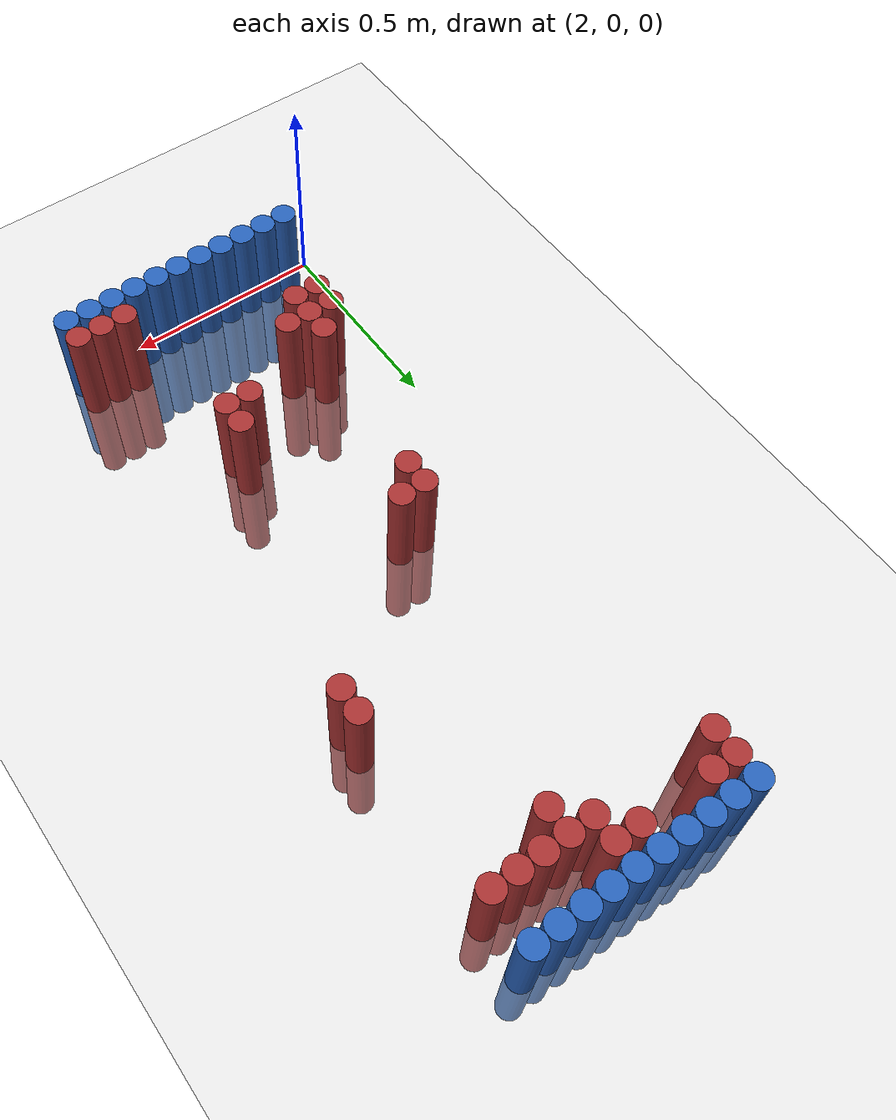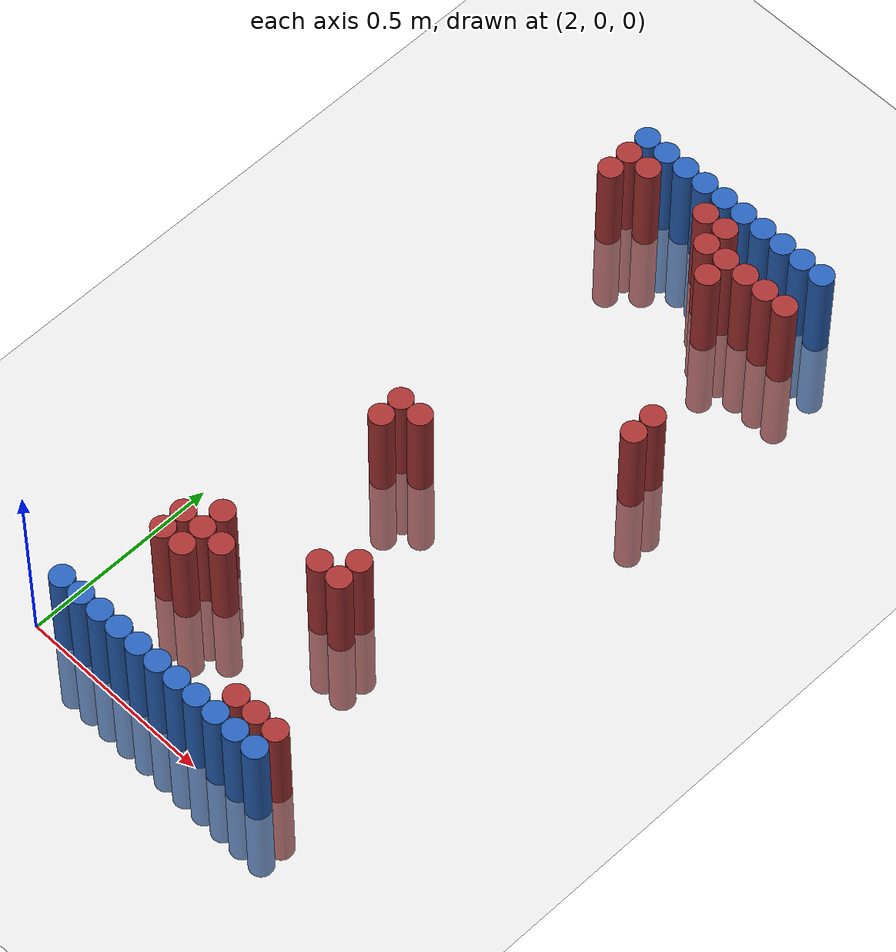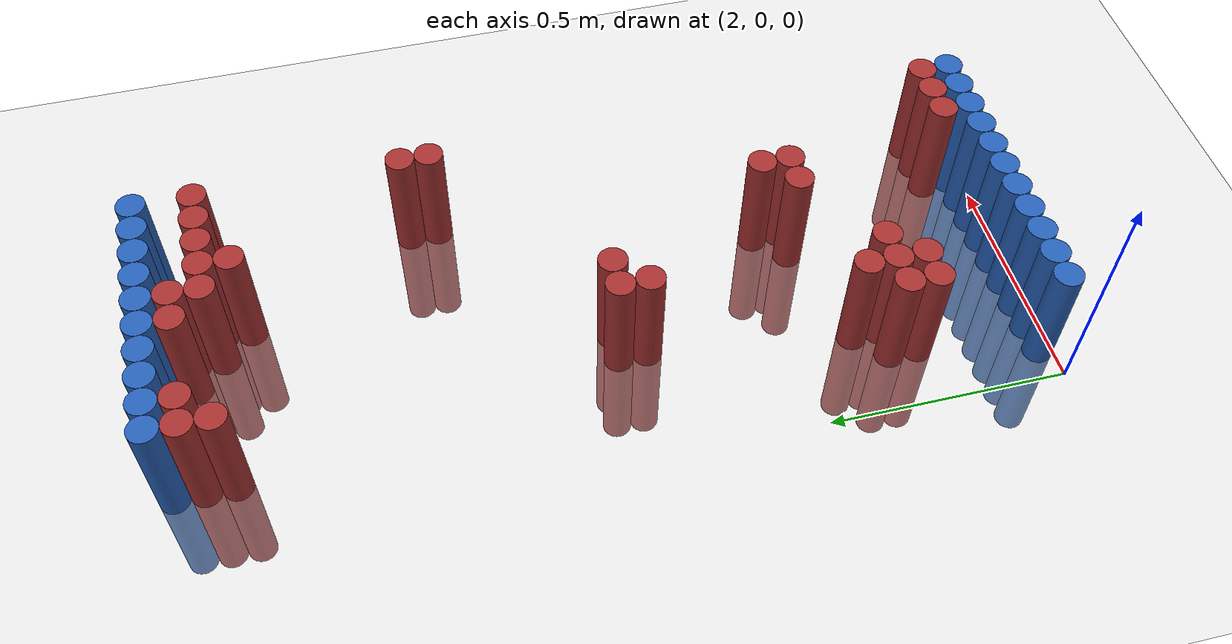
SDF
<sdf version="1.6">
 <world name="default">
  <model name="ground_plane">
   <static>1</static>
   <link name="link">
    <collision name="collision">
     <geometry><plane><normal>0 0 1</normal><size>100 100</size></plane></geometry>
     <surface><friction><ode><mu>100</mu><mu2>50</mu2></ode></friction></surface>
    </collision>
    <visual name="visual">
     <cast_shadows>0</cast_shadows>
     <geometry><plane><normal>0 0 1</normal><size>100 100</size></plane></geometry>
     <material>
      <script><uri>file://media/materials/scripts/gazebo.material</uri><name>Gazebo/Grey</name></script>
     </material>
    </visual>
   </link>
  </model>
  <model name="unit_cylinder_96">
   <static>1</static>
   <pose>2.130000 1.770000 0.000000 0.000000 0.000000 0.000000</pose>
   <link name="link">
    <inertial>
     <mass>1</mass>
     <inertia><ixx>0.145833</ixx><ixy>0</ixy><ixz>0</ixz><iyy>0.145833</iyy><iyz>0</iyz><izz>0.125</izz></inertia>
    </inertial>
    <collision name="collision">
     <geometry><cylinder><radius>0.030000</radius><length>0.5</length></cylinder></geometry>
    </collision>
    <visual name="visual">
     <geometry><cylinder><radius>0.030000</radius><length>0.5</length></cylinder></geometry>
     <material>
      <ambient>0.152000 0.379000 0.720000 1</ambient>
      <diffuse>0.152000 0.379000 0.720000 1</diffuse>
     </material>
     <material>
      <script><name>Gazebo/Grey</name><uri>file://media/materials/scripts/gazebo.material</uri></script>
     </material>
    </visual>
   </link>
  </model>
  <model name="unit_cylinder_97">
   <static>1</static>
   <pose>2.190000 1.770000 0.000000 0.000000 0.000000 0.000000</pose>
   <link name="link">
    <inertial>
     <mass>1</mass>
     <inertia><ixx>0.145833</ixx><ixy>0</ixy><ixz>0</ixz><iyy>0.145833</iyy><iyz>0</iyz><izz>0.125</izz></inertia>
    </inertial>
    <collision name="collision">
     <geometry><cylinder><radius>0.030000</radius><length>0.5</length></cylinder></geometry>
    </collision>
    <visual name="visual">
     <geometry><cylinder><radius>0.030000</radius><length>0.5</length></cylinder></geometry>
     <material>
      <ambient>0.152000 0.379000 0.720000 1</ambient>
      <diffuse>0.152000 0.379000 0.720000 1</diffuse>
     </material>
     <material>
      <script><name>Gazebo/Grey</name><uri>file://media/materials/scripts/gazebo.material</uri></script>
     </material>
    </visual>
   </link>
  </model>
  <model name="unit_cylinder_98">
   <static>1</static>
   <pose>2.250000 1.770000 0.000000 0.000000 0.000000 0.000000</pose>
   <link name="link">
    <inertial>
     <mass>1</mass>
     <inertia><ixx>0.145833</ixx><ixy>0</ixy><ixz>0</ixz><iyy>0.145833</iyy><iyz>0</iyz><izz>0.125</izz></inertia>
    </inertial>
    <collision name="collision">
     <geometry><cylinder><radius>0.030000</radius><length>0.5</length></cylinder></geometry>
    </collision>
    <visual name="visual">
     <geometry><cylinder><radius>0.030000</radius><length>0.5</length></cylinder></geometry>
     <material>
      <ambient>0.152000 0.379000 0.720000 1</ambient>
      <diffuse>0.152000 0.379000 0.720000 1</diffuse>
     </material>
     <material>
      <script><name>Gazebo/Grey</name><uri>file://media/materials/scripts/gazebo.material</uri></script>
     </material>
    </visual>
   </link>
  </model>
  <model name="unit_cylinder_99">
   <static>1</static>
   <pose>2.310000 1.770000 0.000000 0.000000 0.000000 0.000000</pose>
   <link name="link">
    <inertial>
     <mass>1</mass>
     <inertia><ixx>0.145833</ixx><ixy>0</ixy><ixz>0</ixz><iyy>0.145833</iyy><iyz>0</iyz><izz>0.125</izz></inertia>
    </inertial>
    <collision name="collision">
     <geometry><cylinder><radius>0.030000</radius><length>0.5</length></cylinder></geometry>
    </collision>
    <visual name="visual">
     <geometry><cylinder><radius>0.030000</radius><length>0.5</length></cylinder></geometry>
     <material>
      <ambient>0.152000 0.379000 0.720000 1</ambient>
      <diffuse>0.152000 0.379000 0.720000 1</diffuse>
     </material>
     <material>
      <script><name>Gazebo/Grey</name><uri>file://media/materials/scripts/gazebo.material</uri></script>
     </material>
    </visual>
   </link>
  </model>
  <model name="unit_cylinder_100">
   <static>1</static>
   <pose>2.370000 1.770000 0.000000 0.000000 0.000000 0.000000</pose>
   <link name="link">
    <inertial>
     <mass>1</mass>
     <inertia><ixx>0.145833</ixx><ixy>0</ixy><ixz>0</ixz><iyy>0.145833</iyy><iyz>0</iyz><izz>0.125</izz></inertia>
    </inertial>
    <collision name="collision">
     <geometry><cylinder><radius>0.030000</radius><length>0.5</length></cylinder></geometry>
    </collision>
    <visual name="visual">
     <geometry><cylinder><radius>0.030000</radius><length>0.5</length></cylinder></geometry>
     <material>
      <ambient>0.152000 0.379000 0.720000 1</ambient>
      <diffuse>0.152000 0.379000 0.720000 1</diffuse>
     </material>
     <material>
      <script><name>Gazebo/Grey</name><uri>file://media/materials/scripts/gazebo.material</uri></script>
     </material>
    </visual>
   </link>
  </model>
  <model name="unit_cylinder_101">
   <static>1</static>
   <pose>2.430000 1.770000 0.000000 0.000000 0.000000 0.000000</pose>
   <link name="link">
    <inertial>
     <mass>1</mass>
     <inertia><ixx>0.145833</ixx><ixy>0</ixy><ixz>0</ixz><iyy>0.145833</iyy><iyz>0</iyz><izz>0.125</izz></inertia>
    </inertial>
    <collision name="collision">
     <geometry><cylinder><radius>0.030000</radius><length>0.5</length></cylinder></geometry>
    </collision>
    <visual name="visual">
     <geometry><cylinder><radius>0.030000</radius><length>0.5</length></cylinder></geometry>
     <material>
      <ambient>0.152000 0.379000 0.720000 1</ambient>
      <diffuse>0.152000 0.379000 0.720000 1</diffuse>
     </material>
     <material>
      <script><name>Gazebo/Grey</name><uri>file://media/materials/scripts/gazebo.material</uri></script>
     </material>
    </visual>
   </link>
  </model>
  <model name="unit_cylinder_102">
   <static>1</static>
   <pose>2.490000 1.770000 0.000000 0.000000 0.000000 0.000000</pose>
   <link name="link">
    <inertial>
     <mass>1</mass>
     <inertia><ixx>0.145833</ixx><ixy>0</ixy><ixz>0</ixz><iyy>0.145833</iyy><iyz>0</iyz><izz>0.125</izz></inertia>
    </inertial>
    <collision name="collision">
     <geometry><cylinder><radius>0.030000</radius><length>0.5</length></cylinder></geometry>
    </collision>
    <visual name="visual">
     <geometry><cylinder><radius>0.030000</radius><length>0.5</length></cylinder></geometry>
     <material>
      <ambient>0.152000 0.379000 0.720000 1</ambient>
      <diffuse>0.152000 0.379000 0.720000 1</diffuse>
     </material>
     <material>
      <script><name>Gazebo/Grey</name><uri>file://media/materials/scripts/gazebo.material</uri></script>
     </material>
    </visual>
   </link>
  </model>
  <model name="unit_cylinder_103">
   <static>1</static>
   <pose>2.550000 1.770000 0.000000 0.000000 0.000000 0.000000</pose>
   <link name="link">
    <inertial>
     <mass>1</mass>
     <inertia><ixx>0.145833</ixx><ixy>0</ixy><ixz>0</ixz><iyy>0.145833</iyy><iyz>0</iyz><izz>0.125</izz></inertia>
    </inertial>
    <collision name="collision">
     <geometry><cylinder><radius>0.030000</radius><length>0.5</length></cylinder></geometry>
    </collision>
    <visual name="visual">
     <geometry><cylinder><radius>0.030000</radius><length>0.5</length></cylinder></geometry>
     <material>
      <ambient>0.152000 0.379000 0.720000 1</ambient>
      <diffuse>0.152000 0.379000 0.720000 1</diffuse>
     </material>
     <material>
      <script><name>Gazebo/Grey</name><uri>file://media/materials/scripts/gazebo.material</uri></script>
     </material>
    </visual>
   </link>
  </model>
  <model name="unit_cylinder_104">
   <static>1</static>
   <pose>2.610000 1.770000 0.000000 0.000000 0.000000 0.000000</pose>
   <link name="link">
    <inertial>
     <mass>1</mass>
     <inertia><ixx>0.145833</ixx><ixy>0</ixy><ixz>0</ixz><iyy>0.145833</iyy><iyz>0</iyz><izz>0.125</izz></inertia>
    </inertial>
    <collision name="collision">
     <geometry><cylinder><radius>0.030000</radius><length>0.5</length></cylinder></geometry>
    </collision>
    <visual name="visual">
     <geometry><cylinder><radius>0.030000</radius><length>0.5</length></cylinder></geometry>
     <material>
      <ambient>0.152000 0.379000 0.720000 1</ambient>
      <diffuse>0.152000 0.379000 0.720000 1</diffuse>
     </material>
     <material>
      <script><name>Gazebo/Grey</name><uri>file://media/materials/scripts/gazebo.material</uri></script>
     </material>
    </visual>
   </link>
  </model>
  <model name="unit_cylinder_105">
   <static>1</static>
   <pose>2.670000 1.770000 0.000000 0.000000 0.000000 0.000000</pose>
   <link name="link">
    <inertial>
     <mass>1</mass>
     <inertia><ixx>0.145833</ixx><ixy>0</ixy><ixz>0</ixz><iyy>0.145833</iyy><iyz>0</iyz><izz>0.125</izz></inertia>
    </inertial>
    <collision name="collision">
     <geometry><cylinder><radius>0.030000</radius><length>0.5</length></cylinder></geometry>
    </collision>
    <visual name="visual">
     <geometry><cylinder><radius>0.030000</radius><length>0.5</length></cylinder></geometry>
     <material>
      <ambient>0.152000 0.379000 0.720000 1</ambient>
      <diffuse>0.152000 0.379000 0.720000 1</diffuse>
     </material>
     <material>
      <script><name>Gazebo/Grey</name><uri>file://media/materials/scripts/gazebo.material</uri></script>
     </material>
    </visual>
   </link>
  </model>
  <model name="unit_cylinder_125">
   <static>1</static>
   <pose>2.130000 1.710000 0.000000 0.000000 0.000000 0.000000</pose>
   <link name="link">
    <inertial>
     <mass>1</mass>
     <inertia><ixx>0.145833</ixx><ixy>0</ixy><ixz>0</ixz><iyy>0.145833</iyy><iyz>0</iyz><izz>0.125</izz></inertia>
    </inertial>
    <collision name="collision">
     <geometry><cylinder><radius>0.030000</radius><length>0.5</length></cylinder></geometry>
    </collision>
    <visual name="visual">
     <geometry><cylinder><radius>0.030000</radius><length>0.5</length></cylinder></geometry>
     <material>
      <ambient>0.648000 0.192000 0.192000 1</ambient>
      <diffuse>0.648000 0.192000 0.192000 1</diffuse>
     </material>
     <material>
      <script><name>Gazebo/Grey</name><uri>file://media/materials/scripts/gazebo.material</uri></script>
     </material>
    </visual>
   </link>
  </model>
  <model name="unit_cylinder_126">
   <static>1</static>
   <pose>2.190000 1.710000 0.000000 0.000000 0.000000 0.000000</pose>
   <link name="link">
    <inertial>
     <mass>1</mass>
     <inertia><ixx>0.145833</ixx><ixy>0</ixy><ixz>0</ixz><iyy>0.145833</iyy><iyz>0</iyz><izz>0.125</izz></inertia>
    </inertial>
    <collision name="collision">
     <geometry><cylinder><radius>0.030000</radius><length>0.5</length></cylinder></geometry>
    </collision>
    <visual name="visual">
     <geometry><cylinder><radius>0.030000</radius><length>0.5</length></cylinder></geometry>
     <material>
      <ambient>0.648000 0.192000 0.192000 1</ambient>
      <diffuse>0.648000 0.192000 0.192000 1</diffuse>
     </material>
     <material>
      <script><name>Gazebo/Grey</name><uri>file://media/materials/scripts/gazebo.material</uri></script>
     </material>
    </visual>
   </link>
  </model>
  <model name="unit_cylinder_127">
   <static>1</static>
   <pose>2.370000 1.710000 0.000000 0.000000 0.000000 0.000000</pose>
   <link name="link">
    <inertial>
     <mass>1</mass>
     <inertia><ixx>0.145833</ixx><ixy>0</ixy><ixz>0</ixz><iyy>0.145833</iyy><iyz>0</iyz><izz>0.125</izz></inertia>
    </inertial>
    <collision name="collision">
     <geometry><cylinder><radius>0.030000</radius><length>0.5</length></cylinder></geometry>
    </collision>
    <visual name="visual">
     <geometry><cylinder><radius>0.030000</radius><length>0.5</length></cylinder></geometry>
     <material>
      <ambient>0.648000 0.192000 0.192000 1</ambient>
      <diffuse>0.648000 0.192000 0.192000 1</diffuse>
     </material>
     <material>
      <script><name>Gazebo/Grey</name><uri>file://media/materials/scripts/gazebo.material</uri></script>
     </material>
    </visual>
   </link>
  </model>
  <model name="unit_cylinder_128">
   <static>1</static>
   <pose>2.430000 1.710000 0.000000 0.000000 0.000000 0.000000</pose>
   <link name="link">
    <inertial>
     <mass>1</mass>
     <inertia><ixx>0.145833</ixx><ixy>0</ixy><ixz>0</ixz><iyy>0.145833</iyy><iyz>0</iyz><izz>0.125</izz></inertia>
    </inertial>
    <collision name="collision">
     <geometry><cylinder><radius>0.030000</radius><length>0.5</length></cylinder></geometry>
    </collision>
    <visual name="visual">
     <geometry><cylinder><radius>0.030000</radius><length>0.5</length></cylinder></geometry>
     <material>
      <ambient>0.648000 0.192000 0.192000 1</ambient>
      <diffuse>0.648000 0.192000 0.192000 1</diffuse>
     </material>
     <material>
      <script><name>Gazebo/Grey</name><uri>file://media/materials/scripts/gazebo.material</uri></script>
     </material>
    </visual>
   </link>
  </model>
  <model name="unit_cylinder_136">
   <static>1</static>
   <pose>2.130000 1.650000 0.000000 0.000000 0.000000 0.000000</pose>
   <link name="link">
    <inertial>
     <mass>1</mass>
     <inertia><ixx>0.145833</ixx><ixy>0</ixy><ixz>0</ixz><iyy>0.145833</iyy><iyz>0</iyz><izz>0.125</izz></inertia>
    </inertial>
    <collision name="collision">
     <geometry><cylinder><radius>0.030000</radius><length>0.5</length></cylinder></geometry>
    </collision>
    <visual name="visual">
     <geometry><cylinder><radius>0.030000</radius><length>0.5</length></cylinder></geometry>
     <material>
      <ambient>0.648000 0.192000 0.192000 1</ambient>
      <diffuse>0.648000 0.192000 0.192000 1</diffuse>
     </material>
     <material>
      <script><name>Gazebo/Grey</name><uri>file://media/materials/scripts/gazebo.material</uri></script>
     </material>
    </visual>
   </link>
  </model>
  <model name="unit_cylinder_137">
   <static>1</static>
   <pose>2.430000 1.650000 0.000000 0.000000 0.000000 0.000000</pose>
   <link name="link">
    <inertial>
     <mass>1</mass>
     <inertia><ixx>0.145833</ixx><ixy>0</ixy><ixz>0</ixz><iyy>0.145833</iyy><iyz>0</iyz><izz>0.125</izz></inertia>
    </inertial>
    <collision name="collision">
     <geometry><cylinder><radius>0.030000</radius><length>0.5</length></cylinder></geometry>
    </collision>
    <visual name="visual">
     <geometry><cylinder><radius>0.030000</radius><length>0.5</length></cylinder></geometry>
     <material>
      <ambient>0.648000 0.192000 0.192000 1</ambient>
      <diffuse>0.648000 0.192000 0.192000 1</diffuse>
     </material>
     <material>
      <script><name>Gazebo/Grey</name><uri>file://media/materials/scripts/gazebo.material</uri></script>
     </material>
    </visual>
   </link>
  </model>
  <model name="unit_cylinder_138">
   <static>1</static>
   <pose>2.490000 1.650000 0.000000 0.000000 0.000000 0.000000</pose>
   <link name="link">
    <inertial>
     <mass>1</mass>
     <inertia><ixx>0.145833</ixx><ixy>0</ixy><ixz>0</ixz><iyy>0.145833</iyy><iyz>0</iyz><izz>0.125</izz></inertia>
    </inertial>
    <collision name="collision">
     <geometry><cylinder><radius>0.030000</radius><length>0.5</length></cylinder></geometry>
    </collision>
    <visual name="visual">
     <geometry><cylinder><radius>0.030000</radius><length>0.5</length></cylinder></geometry>
     <material>
      <ambient>0.648000 0.192000 0.192000 1</ambient>
      <diffuse>0.648000 0.192000 0.192000 1</diffuse>
     </material>
     <material>
      <script><name>Gazebo/Grey</name><uri>file://media/materials/scripts/gazebo.material</uri></script>
     </material>
    </visual>
   </link>
  </model>
  <model name="unit_cylinder_139">
   <static>1</static>
   <pose>2.550000 1.650000 0.000000 0.000000 0.000000 0.000000</pose>
   <link name="link">
    <inertial>
     <mass>1</mass>
     <inertia><ixx>0.145833</ixx><ixy>0</ixy><ixz>0</ixz><iyy>0.145833</iyy><iyz>0</iyz><izz>0.125</izz></inertia>
    </inertial>
    <collision name="collision">
     <geometry><cylinder><radius>0.030000</radius><length>0.5</length></cylinder></geometry>
    </collision>
    <visual name="visual">
     <geometry><cylinder><radius>0.030000</radius><length>0.5</length></cylinder></geometry>
     <material>
      <ambient>0.648000 0.192000 0.192000 1</ambient>
      <diffuse>0.648000 0.192000 0.192000 1</diffuse>
     </material>
     <material>
      <script><name>Gazebo/Grey</name><uri>file://media/materials/scripts/gazebo.material</uri></script>
     </material>
    </visual>
   </link>
  </model>
  <model name="unit_cylinder_140">
   <static>1</static>
   <pose>2.610000 1.650000 0.000000 0.000000 0.000000 0.000000</pose>
   <link name="link">
    <inertial>
     <mass>1</mass>
     <inertia><ixx>0.145833</ixx><ixy>0</ixy><ixz>0</ixz><iyy>0.145833</iyy><iyz>0</iyz><izz>0.125</izz></inertia>
    </inertial>
    <collision name="collision">
     <geometry><cylinder><radius>0.030000</radius><length>0.5</length></cylinder></geometry>
    </collision>
    <visual name="visual">
     <geometry><cylinder><radius>0.030000</radius><length>0.5</length></cylinder></geometry>
     <material>
      <ambient>0.648000 0.192000 0.192000 1</ambient>
      <diffuse>0.648000 0.192000 0.192000 1</diffuse>
     </material>
     <material>
      <script><name>Gazebo/Grey</name><uri>file://media/materials/scripts/gazebo.material</uri></script>
     </material>
    </visual>
   </link>
  </model>
  <model name="unit_cylinder_141">
   <static>1</static>
   <pose>2.670000 1.650000 0.000000 0.000000 0.000000 0.000000</pose>
   <link name="link">
    <inertial>
     <mass>1</mass>
     <inertia><ixx>0.145833</ixx><ixy>0</ixy><ixz>0</ixz><iyy>0.145833</iyy><iyz>0</iyz><izz>0.125</izz></inertia>
    </inertial>
    <collision name="collision">
     <geometry><cylinder><radius>0.030000</radius><length>0.5</length></cylinder></geometry>
    </collision>
    <visual name="visual">
     <geometry><cylinder><radius>0.030000</radius><length>0.5</length></cylinder></geometry>
     <material>
      <ambient>0.648000 0.192000 0.192000 1</ambient>
      <diffuse>0.648000 0.192000 0.192000 1</diffuse>
     </material>
     <material>
      <script><name>Gazebo/Grey</name><uri>file://media/materials/scripts/gazebo.material</uri></script>
     </material>
    </visual>
   </link>
  </model>
  <model name="unit_cylinder_148">
   <static>1</static>
   <pose>2.490000 1.590000 0.000000 0.000000 0.000000 0.000000</pose>
   <link name="link">
    <inertial>
     <mass>1</mass>
     <inertia><ixx>0.145833</ixx><ixy>0</ixy><ixz>0</ixz><iyy>0.145833</iyy><iyz>0</iyz><izz>0.125</izz></inertia>
    </inertial>
    <collision name="collision">
     <geometry><cylinder><radius>0.030000</radius><length>0.5</length></cylinder></geometry>
    </collision>
    <visual name="visual">
     <geometry><cylinder><radius>0.030000</radius><length>0.5</length></cylinder></geometry>
     <material>
      <ambient>0.648000 0.192000 0.192000 1</ambient>
      <diffuse>0.648000 0.192000 0.192000 1</diffuse>
     </material>
     <material>
      <script><name>Gazebo/Grey</name><uri>file://media/materials/scripts/gazebo.material</uri></script>
     </material>
    </visual>
   </link>
  </model>
  <model name="unit_cylinder_175">
   <static>1</static>
   <pose>2.670000 1.230000 0.000000 0.000000 0.000000 0.000000</pose>
   <link name="link">
    <inertial>
     <mass>1</mass>
     <inertia><ixx>0.145833</ixx><ixy>0</ixy><ixz>0</ixz><iyy>0.145833</iyy><iyz>0</iyz><izz>0.125</izz></inertia>
    </inertial>
    <collision name="collision">
     <geometry><cylinder><radius>0.030000</radius><length>0.5</length></cylinder></geometry>
    </collision>
    <visual name="visual">
     <geometry><cylinder><radius>0.030000</radius><length>0.5</length></cylinder></geometry>
     <material>
      <ambient>0.648000 0.192000 0.192000 1</ambient>
      <diffuse>0.648000 0.192000 0.192000 1</diffuse>
     </material>
     <material>
      <script><name>Gazebo/Grey</name><uri>file://media/materials/scripts/gazebo.material</uri></script>
     </material>
    </visual>
   </link>
  </model>
  <model name="unit_cylinder_178">
   <static>1</static>
   <pose>2.670000 1.170000 0.000000 0.000000 0.000000 0.000000</pose>
   <link name="link">
    <inertial>
     <mass>1</mass>
     <inertia><ixx>0.145833</ixx><ixy>0</ixy><ixz>0</ixz><iyy>0.145833</iyy><iyz>0</iyz><izz>0.125</izz></inertia>
    </inertial>
    <collision name="collision">
     <geometry><cylinder><radius>0.030000</radius><length>0.5</length></cylinder></geometry>
    </collision>
    <visual name="visual">
     <geometry><cylinder><radius>0.030000</radius><length>0.5</length></cylinder></geometry>
     <material>
      <ambient>0.648000 0.192000 0.192000 1</ambient>
      <diffuse>0.648000 0.192000 0.192000 1</diffuse>
     </material>
     <material>
      <script><name>Gazebo/Grey</name><uri>file://media/materials/scripts/gazebo.material</uri></script>
     </material>
    </visual>
   </link>
  </model>
  <model name="unit_cylinder_184">
   <static>1</static>
   <pose>2.250000 0.870000 0.000000 0.000000 0.000000 0.000000</pose>
   <link name="link">
    <inertial>
     <mass>1</mass>
     <inertia><ixx>0.145833</ixx><ixy>0</ixy><ixz>0</ixz><iyy>0.145833</iyy><iyz>0</iyz><izz>0.125</izz></inertia>
    </inertial>
    <collision name="collision">
     <geometry><cylinder><radius>0.030000</radius><length>0.5</length></cylinder></geometry>
    </collision>
    <visual name="visual">
     <geometry><cylinder><radius>0.030000</radius><length>0.5</length></cylinder></geometry>
     <material>
      <ambient>0.648000 0.192000 0.192000 1</ambient>
      <diffuse>0.648000 0.192000 0.192000 1</diffuse>
     </material>
     <material>
      <script><name>Gazebo/Grey</name><uri>file://media/materials/scripts/gazebo.material</uri></script>
     </material>
    </visual>
   </link>
  </model>
  <model name="unit_cylinder_185">
   <static>1</static>
   <pose>2.310000 0.870000 0.000000 0.000000 0.000000 0.000000</pose>
   <link name="link">
    <inertial>
     <mass>1</mass>
     <inertia><ixx>0.145833</ixx><ixy>0</ixy><ixz>0</ixz><iyy>0.145833</iyy><iyz>0</iyz><izz>0.125</izz></inertia>
    </inertial>
    <collision name="collision">
     <geometry><cylinder><radius>0.030000</radius><length>0.5</length></cylinder></geometry>
    </collision>
    <visual name="visual">
     <geometry><cylinder><radius>0.030000</radius><length>0.5</length></cylinder></geometry>
     <material>
      <ambient>0.648000 0.192000 0.192000 1</ambient>
      <diffuse>0.648000 0.192000 0.192000 1</diffuse>
     </material>
     <material>
      <script><name>Gazebo/Grey</name><uri>file://media/materials/scripts/gazebo.material</uri></script>
     </material>
    </visual>
   </link>
  </model>
  <model name="unit_cylinder_188">
   <static>1</static>
   <pose>2.250000 0.810000 0.000000 0.000000 0.000000 0.000000</pose>
   <link name="link">
    <inertial>
     <mass>1</mass>
     <inertia><ixx>0.145833</ixx><ixy>0</ixy><ixz>0</ixz><iyy>0.145833</iyy><iyz>0</iyz><izz>0.125</izz></inertia>
    </inertial>
    <collision name="collision">
     <geometry><cylinder><radius>0.030000</radius><length>0.5</length></cylinder></geometry>
    </collision>
    <visual name="visual">
     <geometry><cylinder><radius>0.030000</radius><length>0.5</length></cylinder></geometry>
     <material>
      <ambient>0.648000 0.192000 0.192000 1</ambient>
      <diffuse>0.648000 0.192000 0.192000 1</diffuse>
     </material>
     <material>
      <script><name>Gazebo/Grey</name><uri>file://media/materials/scripts/gazebo.material</uri></script>
     </material>
    </visual>
   </link>
  </model>
  <model name="unit_cylinder_193">
   <static>1</static>
   <pose>2.490000 0.510000 0.000000 0.000000 0.000000 0.000000</pose>
   <link name="link">
    <inertial>
     <mass>1</mass>
     <inertia><ixx>0.145833</ixx><ixy>0</ixy><ixz>0</ixz><iyy>0.145833</iyy><iyz>0</iyz><izz>0.125</izz></inertia>
    </inertial>
    <collision name="collision">
     <geometry><cylinder><radius>0.030000</radius><length>0.5</length></cylinder></geometry>
    </collision>
    <visual name="visual">
     <geometry><cylinder><radius>0.030000</radius><length>0.5</length></cylinder></geometry>
     <material>
      <ambient>0.648000 0.192000 0.192000 1</ambient>
      <diffuse>0.648000 0.192000 0.192000 1</diffuse>
     </material>
     <material>
      <script><name>Gazebo/Grey</name><uri>file://media/materials/scripts/gazebo.material</uri></script>
     </material>
    </visual>
   </link>
  </model>
  <model name="unit_cylinder_196">
   <static>1</static>
   <pose>2.430000 0.450000 0.000000 0.000000 0.000000 0.000000</pose>
   <link name="link">
    <inertial>
     <mass>1</mass>
     <inertia><ixx>0.145833</ixx><ixy>0</ixy><ixz>0</ixz><iyy>0.145833</iyy><iyz>0</iyz><izz>0.125</izz></inertia>
    </inertial>
    <collision name="collision">
     <geometry><cylinder><radius>0.030000</radius><length>0.5</length></cylinder></geometry>
    </collision>
    <visual name="visual">
     <geometry><cylinder><radius>0.030000</radius><length>0.5</length></cylinder></geometry>
     <material>
      <ambient>0.648000 0.192000 0.192000 1</ambient>
      <diffuse>0.648000 0.192000 0.192000 1</diffuse>
     </material>
     <material>
      <script><name>Gazebo/Grey</name><uri>file://media/materials/scripts/gazebo.material</uri></script>
     </material>
    </visual>
   </link>
  </model>
  <model name="unit_cylinder_197">
   <static>1</static>
   <pose>2.490000 0.450000 0.000000 0.000000 0.000000 0.000000</pose>
   <link name="link">
    <inertial>
     <mass>1</mass>
     <inertia><ixx>0.145833</ixx><ixy>0</ixy><ixz>0</ixz><iyy>0.145833</iyy><iyz>0</iyz><izz>0.125</izz></inertia>
    </inertial>
    <collision name="collision">
     <geometry><cylinder><radius>0.030000</radius><length>0.5</length></cylinder></geometry>
    </collision>
    <visual name="visual">
     <geometry><cylinder><radius>0.030000</radius><length>0.5</length></cylinder></geometry>
     <material>
      <ambient>0.648000 0.192000 0.192000 1</ambient>
      <diffuse>0.648000 0.192000 0.192000 1</diffuse>
     </material>
     <material>
      <script><name>Gazebo/Grey</name><uri>file://media/materials/scripts/gazebo.material</uri></script>
     </material>
    </visual>
   </link>
  </model>
  <model name="unit_cylinder_198">
   <static>1</static>
   <pose>2.190000 0.390000 0.000000 0.000000 0.000000 0.000000</pose>
   <link name="link">
    <inertial>
     <mass>1</mass>
     <inertia><ixx>0.145833</ixx><ixy>0</ixy><ixz>0</ixz><iyy>0.145833</iyy><iyz>0</iyz><izz>0.125</izz></inertia>
    </inertial>
    <collision name="collision">
     <geometry><cylinder><radius>0.030000</radius><length>0.5</length></cylinder></geometry>
    </collision>
    <visual name="visual">
     <geometry><cylinder><radius>0.030000</radius><length>0.5</length></cylinder></geometry>
     <material>
      <ambient>0.648000 0.192000 0.192000 1</ambient>
      <diffuse>0.648000 0.192000 0.192000 1</diffuse>
     </material>
     <material>
      <script><name>Gazebo/Grey</name><uri>file://media/materials/scripts/gazebo.material</uri></script>
     </material>
    </visual>
   </link>
  </model>
  <model name="unit_cylinder_199">
   <static>1</static>
   <pose>2.130000 0.330000 0.000000 0.000000 0.000000 0.000000</pose>
   <link name="link">
    <inertial>
     <mass>1</mass>
     <inertia><ixx>0.145833</ixx><ixy>0</ixy><ixz>0</ixz><iyy>0.145833</iyy><iyz>0</iyz><izz>0.125</izz></inertia>
    </inertial>
    <collision name="collision">
     <geometry><cylinder><radius>0.030000</radius><length>0.5</length></cylinder></geometry>
    </collision>
    <visual name="visual">
     <geometry><cylinder><radius>0.030000</radius><length>0.5</length></cylinder></geometry>
     <material>
      <ambient>0.648000 0.192000 0.192000 1</ambient>
      <diffuse>0.648000 0.192000 0.192000 1</diffuse>
     </material>
     <material>
      <script><name>Gazebo/Grey</name><uri>file://media/materials/scripts/gazebo.material</uri></script>
     </material>
    </visual>
   </link>
  </model>
  <model name="unit_cylinder_200">
   <static>1</static>
   <pose>2.190000 0.330000 0.000000 0.000000 0.000000 0.000000</pose>
   <link name="link">
    <inertial>
     <mass>1</mass>
     <inertia><ixx>0.145833</ixx><ixy>0</ixy><ixz>0</ixz><iyy>0.145833</iyy><iyz>0</iyz><izz>0.125</izz></inertia>
    </inertial>
    <collision name="collision">
     <geometry><cylinder><radius>0.030000</radius><length>0.5</length></cylinder></geometry>
    </collision>
    <visual name="visual">
     <geometry><cylinder><radius>0.030000</radius><length>0.5</length></cylinder></geometry>
     <material>
      <ambient>0.648000 0.192000 0.192000 1</ambient>
      <diffuse>0.648000 0.192000 0.192000 1</diffuse>
     </material>
     <material>
      <script><name>Gazebo/Grey</name><uri>file://media/materials/scripts/gazebo.material</uri></script>
     </material>
    </visual>
   </link>
  </model>
  <model name="unit_cylinder_201">
   <static>1</static>
   <pose>2.250000 0.330000 0.000000 0.000000 0.000000 0.000000</pose>
   <link name="link">
    <inertial>
     <mass>1</mass>
     <inertia><ixx>0.145833</ixx><ixy>0</ixy><ixz>0</ixz><iyy>0.145833</iyy><iyz>0</iyz><izz>0.125</izz></inertia>
    </inertial>
    <collision name="collision">
     <geometry><cylinder><radius>0.030000</radius><length>0.5</length></cylinder></geometry>
    </collision>
    <visual name="visual">
     <geometry><cylinder><radius>0.030000</radius><length>0.5</length></cylinder></geometry>
     <material>
      <ambient>0.648000 0.192000 0.192000 1</ambient>
      <diffuse>0.648000 0.192000 0.192000 1</diffuse>
     </material>
     <material>
      <script><name>Gazebo/Grey</name><uri>file://media/materials/scripts/gazebo.material</uri></script>
     </material>
    </visual>
   </link>
  </model>
  <model name="unit_cylinder_203">
   <static>1</static>
   <pose>2.130000 0.270000 0.000000 0.000000 0.000000 0.000000</pose>
   <link name="link">
    <inertial>
     <mass>1</mass>
     <inertia><ixx>0.145833</ixx><ixy>0</ixy><ixz>0</ixz><iyy>0.145833</iyy><iyz>0</iyz><izz>0.125</izz></inertia>
    </inertial>
    <collision name="collision">
     <geometry><cylinder><radius>0.030000</radius><length>0.5</length></cylinder></geometry>
    </collision>
    <visual name="visual">
     <geometry><cylinder><radius>0.030000</radius><length>0.5</length></cylinder></geometry>
     <material>
      <ambient>0.648000 0.192000 0.192000 1</ambient>
      <diffuse>0.648000 0.192000 0.192000 1</diffuse>
     </material>
     <material>
      <script><name>Gazebo/Grey</name><uri>file://media/materials/scripts/gazebo.material</uri></script>
     </material>
    </visual>
   </link>
  </model>
  <model name="unit_cylinder_204">
   <static>1</static>
   <pose>2.190000 0.270000 0.000000 0.000000 0.000000 0.000000</pose>
   <link name="link">
    <inertial>
     <mass>1</mass>
     <inertia><ixx>0.145833</ixx><ixy>0</ixy><ixz>0</ixz><iyy>0.145833</iyy><iyz>0</iyz><izz>0.125</izz></inertia>
    </inertial>
    <collision name="collision">
     <geometry><cylinder><radius>0.030000</radius><length>0.5</length></cylinder></geometry>
    </collision>
    <visual name="visual">
     <geometry><cylinder><radius>0.030000</radius><length>0.5</length></cylinder></geometry>
     <material>
      <ambient>0.648000 0.192000 0.192000 1</ambient>
      <diffuse>0.648000 0.192000 0.192000 1</diffuse>
     </material>
     <material>
      <script><name>Gazebo/Grey</name><uri>file://media/materials/scripts/gazebo.material</uri></script>
     </material>
    </visual>
   </link>
  </model>
  <model name="unit_cylinder_207">
   <static>1</static>
   <pose>2.550000 0.090000 0.000000 0.000000 0.000000 0.000000</pose>
   <link name="link">
    <inertial>
     <mass>1</mass>
     <inertia><ixx>0.145833</ixx><ixy>0</ixy><ixz>0</ixz><iyy>0.145833</iyy><iyz>0</iyz><izz>0.125</izz></inertia>
    </inertial>
    <collision name="collision">
     <geometry><cylinder><radius>0.030000</radius><length>0.5</length></cylinder></geometry>
    </collision>
    <visual name="visual">
     <geometry><cylinder><radius>0.030000</radius><length>0.5</length></cylinder></geometry>
     <material>
      <ambient>0.648000 0.192000 0.192000 1</ambient>
      <diffuse>0.648000 0.192000 0.192000 1</diffuse>
     </material>
     <material>
      <script><name>Gazebo/Grey</name><uri>file://media/materials/scripts/gazebo.material</uri></script>
     </material>
    </visual>
   </link>
  </model>
  <model name="unit_cylinder_208">
   <static>1</static>
   <pose>2.610000 0.090000 0.000000 0.000000 0.000000 0.000000</pose>
   <link name="link">
    <inertial>
     <mass>1</mass>
     <inertia><ixx>0.145833</ixx><ixy>0</ixy><ixz>0</ixz><iyy>0.145833</iyy><iyz>0</iyz><izz>0.125</izz></inertia>
    </inertial>
    <collision name="collision">
     <geometry><cylinder><radius>0.030000</radius><length>0.5</length></cylinder></geometry>
    </collision>
    <visual name="visual">
     <geometry><cylinder><radius>0.030000</radius><length>0.5</length></cylinder></geometry>
     <material>
      <ambient>0.648000 0.192000 0.192000 1</ambient>
      <diffuse>0.648000 0.192000 0.192000 1</diffuse>
     </material>
     <material>
      <script><name>Gazebo/Grey</name><uri>file://media/materials/scripts/gazebo.material</uri></script>
     </material>
    </visual>
   </link>
  </model>
  <model name="unit_cylinder_209">
   <static>1</static>
   <pose>2.670000 0.090000 0.000000 0.000000 0.000000 0.000000</pose>
   <link name="link">
    <inertial>
     <mass>1</mass>
     <inertia><ixx>0.145833</ixx><ixy>0</ixy><ixz>0</ixz><iyy>0.145833</iyy><iyz>0</iyz><izz>0.125</izz></inertia>
    </inertial>
    <collision name="collision">
     <geometry><cylinder><radius>0.030000</radius><length>0.5</length></cylinder></geometry>
    </collision>
    <visual name="visual">
     <geometry><cylinder><radius>0.030000</radius><length>0.5</length></cylinder></geometry>
     <material>
      <ambient>0.648000 0.192000 0.192000 1</ambient>
      <diffuse>0.648000 0.192000 0.192000 1</diffuse>
     </material>
     <material>
      <script><name>Gazebo/Grey</name><uri>file://media/materials/scripts/gazebo.material</uri></script>
     </material>
    </visual>
   </link>
  </model>
  <model name="unit_cylinder_215">
   <static>1</static>
   <pose>2.070000 0.030000 0.000000 0.000000 0.000000 0.000000</pose>
   <link name="link">
    <inertial>
     <mass>1</mass>
     <inertia><ixx>0.145833</ixx><ixy>0</ixy><ixz>0</ixz><iyy>0.145833</iyy><iyz>0</iyz><izz>0.125</izz></inertia>
    </inertial>
    <collision name="collision">
     <geometry><cylinder><radius>0.030000</radius><length>0.5</length></cylinder></geometry>
    </collision>
    <visual name="visual">
     <geometry><cylinder><radius>0.030000</radius><length>0.5</length></cylinder></geometry>
     <material>
      <ambient>0.152000 0.379000 0.720000 1</ambient>
      <diffuse>0.152000 0.379000 0.720000 1</diffuse>
     </material>
     <material>
      <script><name>Gazebo/Grey</name><uri>file://media/materials/scripts/gazebo.material</uri></script>
     </material>
    </visual>
   </link>
  </model>
  <model name="unit_cylinder_216">
   <static>1</static>
   <pose>2.130000 0.030000 0.000000 0.000000 0.000000 0.000000</pose>
   <link name="link">
    <inertial>
     <mass>1</mass>
     <inertia><ixx>0.145833</ixx><ixy>0</ixy><ixz>0</ixz><iyy>0.145833</iyy><iyz>0</iyz><izz>0.125</izz></inertia>
    </inertial>
    <collision name="collision">
     <geometry><cylinder><radius>0.030000</radius><length>0.5</length></cylinder></geometry>
    </collision>
    <visual name="visual">
     <geometry><cylinder><radius>0.030000</radius><length>0.5</length></cylinder></geometry>
     <material>
      <ambient>0.152000 0.379000 0.720000 1</ambient>
      <diffuse>0.152000 0.379000 0.720000 1</diffuse>
     </material>
     <material>
      <script><name>Gazebo/Grey</name><uri>file://media/materials/scripts/gazebo.material</uri></script>
     </material>
    </visual>
   </link>
  </model>
  <model name="unit_cylinder_217">
   <static>1</static>
   <pose>2.190000 0.030000 0.000000 0.000000 0.000000 0.000000</pose>
   <link name="link">
    <inertial>
     <mass>1</mass>
     <inertia><ixx>0.145833</ixx><ixy>0</ixy><ixz>0</ixz><iyy>0.145833</iyy><iyz>0</iyz><izz>0.125</izz></inertia>
    </inertial>
    <collision name="collision">
     <geometry><cylinder><radius>0.030000</radius><length>0.5</length></cylinder></geometry>
    </collision>
    <visual name="visual">
     <geometry><cylinder><radius>0.030000</radius><length>0.5</length></cylinder></geometry>
     <material>
      <ambient>0.152000 0.379000 0.720000 1</ambient>
      <diffuse>0.152000 0.379000 0.720000 1</diffuse>
     </material>
     <material>
      <script><name>Gazebo/Grey</name><uri>file://media/materials/scripts/gazebo.material</uri></script>
     </material>
    </visual>
   </link>
  </model>
  <model name="unit_cylinder_218">
   <static>1</static>
   <pose>2.250000 0.030000 0.000000 0.000000 0.000000 0.000000</pose>
   <link name="link">
    <inertial>
     <mass>1</mass>
     <inertia><ixx>0.145833</ixx><ixy>0</ixy><ixz>0</ixz><iyy>0.145833</iyy><iyz>0</iyz><izz>0.125</izz></inertia>
    </inertial>
    <collision name="collision">
     <geometry><cylinder><radius>0.030000</radius><length>0.5</length></cylinder></geometry>
    </collision>
    <visual name="visual">
     <geometry><cylinder><radius>0.030000</radius><length>0.5</length></cylinder></geometry>
     <material>
      <ambient>0.152000 0.379000 0.720000 1</ambient>
      <diffuse>0.152000 0.379000 0.720000 1</diffuse>
     </material>
     <material>
      <script><name>Gazebo/Grey</name><uri>file://media/materials/scripts/gazebo.material</uri></script>
     </material>
    </visual>
   </link>
  </model>
  <model name="unit_cylinder_219">
   <static>1</static>
   <pose>2.310000 0.030000 0.000000 0.000000 0.000000 0.000000</pose>
   <link name="link">
    <inertial>
     <mass>1</mass>
     <inertia><ixx>0.145833</ixx><ixy>0</ixy><ixz>0</ixz><iyy>0.145833</iyy><iyz>0</iyz><izz>0.125</izz></inertia>
    </inertial>
    <collision name="collision">
     <geometry><cylinder><radius>0.030000</radius><length>0.5</length></cylinder></geometry>
    </collision>
    <visual name="visual">
     <geometry><cylinder><radius>0.030000</radius><length>0.5</length></cylinder></geometry>
     <material>
      <ambient>0.152000 0.379000 0.720000 1</ambient>
      <diffuse>0.152000 0.379000 0.720000 1</diffuse>
     </material>
     <material>
      <script><name>Gazebo/Grey</name><uri>file://media/materials/scripts/gazebo.material</uri></script>
     </material>
    </visual>
   </link>
  </model>
  <model name="unit_cylinder_220">
   <static>1</static>
   <pose>2.370000 0.030000 0.000000 0.000000 0.000000 0.000000</pose>
   <link name="link">
    <inertial>
     <mass>1</mass>
     <inertia><ixx>0.145833</ixx><ixy>0</ixy><ixz>0</ixz><iyy>0.145833</iyy><iyz>0</iyz><izz>0.125</izz></inertia>
    </inertial>
    <collision name="collision">
     <geometry><cylinder><radius>0.030000</radius><length>0.5</length></cylinder></geometry>
    </collision>
    <visual name="visual">
     <geometry><cylinder><radius>0.030000</radius><length>0.5</length></cylinder></geometry>
     <material>
      <ambient>0.152000 0.379000 0.720000 1</ambient>
      <diffuse>0.152000 0.379000 0.720000 1</diffuse>
     </material>
     <material>
      <script><name>Gazebo/Grey</name><uri>file://media/materials/scripts/gazebo.material</uri></script>
     </material>
    </visual>
   </link>
  </model>
  <model name="unit_cylinder_221">
   <static>1</static>
   <pose>2.430000 0.030000 0.000000 0.000000 0.000000 0.000000</pose>
   <link name="link">
    <inertial>
     <mass>1</mass>
     <inertia><ixx>0.145833</ixx><ixy>0</ixy><ixz>0</ixz><iyy>0.145833</iyy><iyz>0</iyz><izz>0.125</izz></inertia>
    </inertial>
    <collision name="collision">
     <geometry><cylinder><radius>0.030000</radius><length>0.5</length></cylinder></geometry>
    </collision>
    <visual name="visual">
     <geometry><cylinder><radius>0.030000</radius><length>0.5</length></cylinder></geometry>
     <material>
      <ambient>0.152000 0.379000 0.720000 1</ambient>
      <diffuse>0.152000 0.379000 0.720000 1</diffuse>
     </material>
     <material>
      <script><name>Gazebo/Grey</name><uri>file://media/materials/scripts/gazebo.material</uri></script>
     </material>
    </visual>
   </link>
  </model>
  <model name="unit_cylinder_222">
   <static>1</static>
   <pose>2.490000 0.030000 0.000000 0.000000 0.000000 0.000000</pose>
   <link name="link">
    <inertial>
     <mass>1</mass>
     <inertia><ixx>0.145833</ixx><ixy>0</ixy><ixz>0</ixz><iyy>0.145833</iyy><iyz>0</iyz><izz>0.125</izz></inertia>
    </inertial>
    <collision name="collision">
     <geometry><cylinder><radius>0.030000</radius><length>0.5</length></cylinder></geometry>
    </collision>
    <visual name="visual">
     <geometry><cylinder><radius>0.030000</radius><length>0.5</length></cylinder></geometry>
     <material>
      <ambient>0.152000 0.379000 0.720000 1</ambient>
      <diffuse>0.152000 0.379000 0.720000 1</diffuse>
     </material>
     <material>
      <script><name>Gazebo/Grey</name><uri>file://media/materials/scripts/gazebo.material</uri></script>
     </material>
    </visual>
   </link>
  </model>
  <model name="unit_cylinder_223">
   <static>1</static>
   <pose>2.550000 0.030000 0.000000 0.000000 0.000000 0.000000</pose>
   <link name="link">
    <inertial>
     <mass>1</mass>
     <inertia><ixx>0.145833</ixx><ixy>0</ixy><ixz>0</ixz><iyy>0.145833</iyy><iyz>0</iyz><izz>0.125</izz></inertia>
    </inertial>
    <collision name="collision">
     <geometry><cylinder><radius>0.030000</radius><length>0.5</length></cylinder></geometry>
    </collision>
    <visual name="visual">
     <geometry><cylinder><radius>0.030000</radius><length>0.5</length></cylinder></geometry>
     <material>
      <ambient>0.152000 0.379000 0.720000 1</ambient>
      <diffuse>0.152000 0.379000 0.720000 1</diffuse>
     </material>
     <material>
      <script><name>Gazebo/Grey</name><uri>file://media/materials/scripts/gazebo.material</uri></script>
     </material>
    </visual>
   </link>
  </model>
  <model name="unit_cylinder_224">
   <static>1</static>
   <pose>2.610000 0.030000 0.000000 0.000000 0.000000 0.000000</pose>
   <link name="link">
    <inertial>
     <mass>1</mass>
     <inertia><ixx>0.145833</ixx><ixy>0</ixy><ixz>0</ixz><iyy>0.145833</iyy><iyz>0</iyz><izz>0.125</izz></inertia>
    </inertial>
    <collision name="collision">
     <geometry><cylinder><radius>0.030000</radius><length>0.5</length></cylinder></geometry>
    </collision>
    <visual name="visual">
     <geometry><cylinder><radius>0.030000</radius><length>0.5</length></cylinder></geometry>
     <material>
      <ambient>0.152000 0.379000 0.720000 1</ambient>
      <diffuse>0.152000 0.379000 0.720000 1</diffuse>
     </material>
     <material>
      <script><name>Gazebo/Grey</name><uri>file://media/materials/scripts/gazebo.material</uri></script>
     </material>
    </visual>
   </link>
  </model>
  <model name="unit_cylinder_225">
   <static>1</static>
   <pose>2.670000 0.030000 0.000000 0.000000 0.000000 0.000000</pose>
   <link name="link">
    <inertial>
     <mass>1</mass>
     <inertia><ixx>0.145833</ixx><ixy>0</ixy><ixz>0</ixz><iyy>0.145833</iyy><iyz>0</iyz><izz>0.125</izz></inertia>
    </inertial>
    <collision name="collision">
     <geometry><cylinder><radius>0.030000</radius><length>0.5</length></cylinder></geometry>
    </collision>
    <visual name="visual">
     <geometry><cylinder><radius>0.030000</radius><length>0.5</length></cylinder></geometry>
     <material>
      <ambient>0.152000 0.379000 0.720000 1</ambient>
      <diffuse>0.152000 0.379000 0.720000 1</diffuse>
     </material>
     <material>
      <script><name>Gazebo/Grey</name><uri>file://media/materials/scripts/gazebo.material</uri></script>
     </material>
    </visual>
   </link>
  </model>
 </world>
</sdf>
